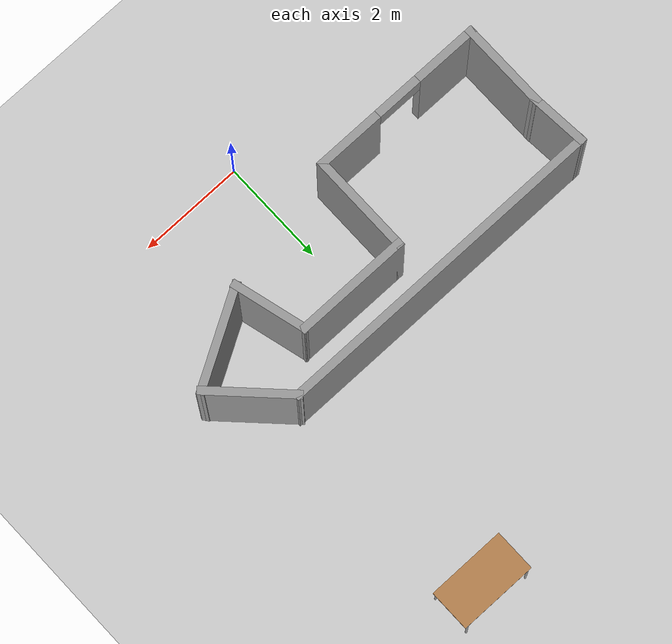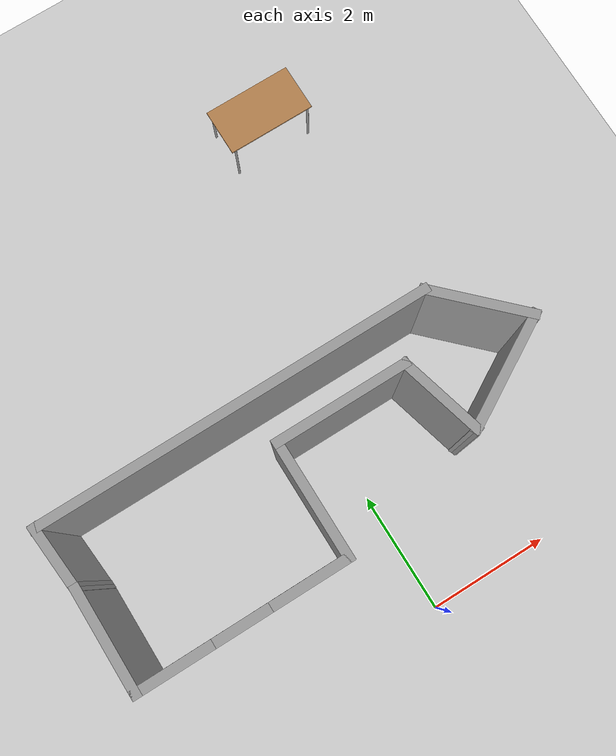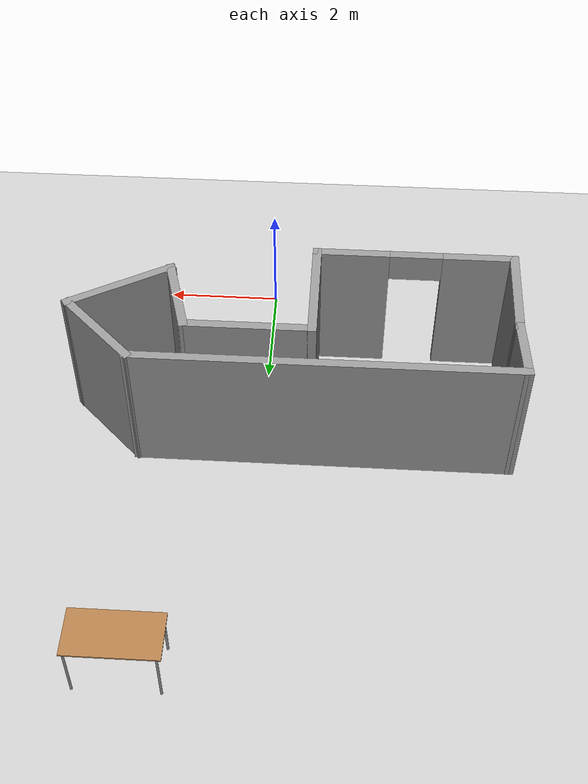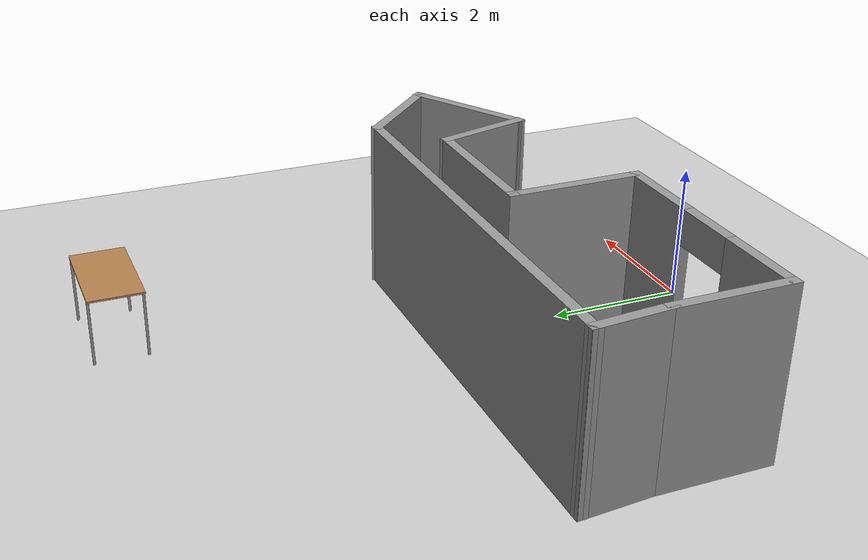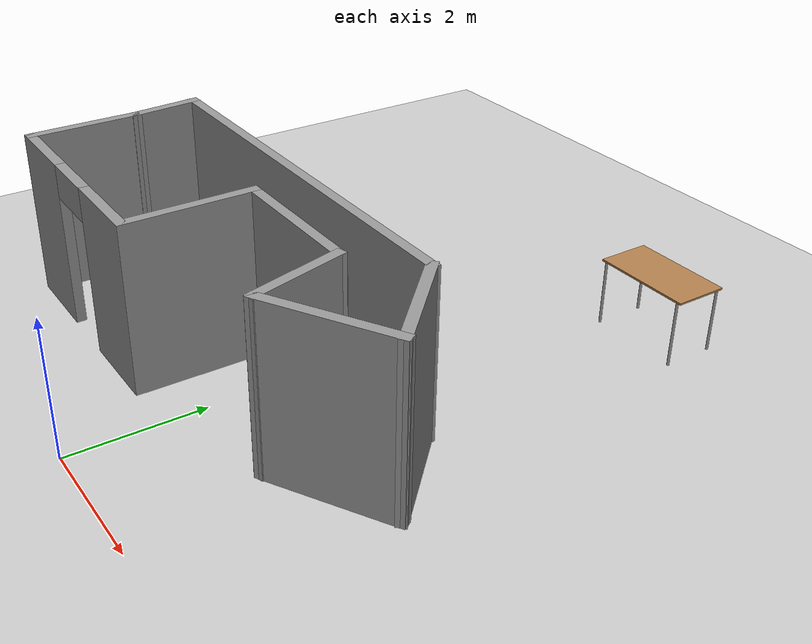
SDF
<sdf version="1.6">
 <world name="default">
  <model name="ground_plane">
   <static>1</static>
   <link name="link">
    <collision name="collision">
     <geometry><plane><normal>0 0 1</normal><size>1000 1000</size></plane></geometry>
     <surface>
      <contact><collide_bitmask>65535</collide_bitmask></contact>
      <friction><ode><mu>100</mu><mu2>50</mu2></ode></friction>
     </surface>
    </collision>
    <visual name="visual">
     <cast_shadows>0</cast_shadows>
     <geometry><plane><normal>0 0 1</normal><size>1000 1000</size></plane></geometry>
     <material>
      <script><uri>file://media/materials/scripts/gazebo.material</uri><name>Gazebo/Grey</name></script>
     </material>
    </visual>
   </link>
  </model>
  <model name="test1">
   <pose>-0.50116 2.70346 0 0 -0 0</pose>
   <link name="Wall_0">
    <collision name="Wall_0_Collision">
     <geometry><box><size>1.75 0.15 2.5</size></box></geometry>
     <pose>0 0 1.25 0 -0 0</pose>
    </collision>
    <visual name="Wall_0_Visual">
     <pose>0 0 1.25 0 -0 0</pose>
     <geometry><box><size>1.75 0.15 2.5</size></box></geometry>
     <material>
      <script><uri>file://media/materials/scripts/gazebo.material</uri><name>Gazebo/Grey</name></script>
      <ambient>1 1 1 1</ambient>
     </material>
     <meta><layer>0</layer></meta>
    </visual>
    <pose>-3.67354 -0.516718 0 0 0 -1.5708</pose>
   </link>
   <link name="Wall_1">
    <pose>-1.99854 -1.31672 0 0 -0 0</pose>
    <visual name="Wall_1_Visual_0">
     <pose>-1.1075 0 1.25 0 -0 0</pose>
     <geometry><box><size>1.285 0.15 2.5</size></box></geometry>
     <material>
      <script><uri>file://media/materials/scripts/gazebo.material</uri><name>Gazebo/Grey</name></script>
      <ambient>1 1 1 1</ambient>
     </material>
     <meta><layer>0</layer></meta>
    </visual>
    <collision name="Wall_1_Collision_0">
     <geometry><box><size>1.285 0.15 2.5</size></box></geometry>
     <pose>-1.1075 0 1.25 0 -0 0</pose>
    </collision>
    <visual name="Wall_1_Visual_1">
     <pose>1.0925 0 1.25 0 -0 0</pose>
     <geometry><box><size>1.315 0.15 2.5</size></box></geometry>
     <material>
      <script><uri>file://media/materials/scripts/gazebo.material</uri><name>Gazebo/Grey</name></script>
      <ambient>1 1 1 1</ambient>
     </material>
     <meta><layer>0</layer></meta>
    </visual>
    <collision name="Wall_1_Collision_1">
     <geometry><box><size>1.315 0.15 2.5</size></box></geometry>
     <pose>1.0925 0 1.25 0 -0 0</pose>
    </collision>
    <visual name="Wall_1_Visual_2">
     <pose>-0.015 0 2.25 0 -0 0</pose>
     <geometry><box><size>0.9 0.15 0.5</size></box></geometry>
     <material>
      <script><uri>file://media/materials/scripts/gazebo.material</uri><name>Gazebo/Grey</name></script>
      <ambient>1 1 1 1</ambient>
     </material>
     <meta><layer>0</layer></meta>
    </visual>
    <collision name="Wall_1_Collision_2">
     <geometry><box><size>0.9 0.15 0.5</size></box></geometry>
     <pose>-0.015 0 2.25 0 -0 0</pose>
    </collision>
   </link>
   <link name="Wall_2">
    <collision name="Wall_2_Collision">
     <geometry><box><size>2 0.15 2.5</size></box></geometry>
     <pose>0 0 1.25 0 -0 0</pose>
    </collision>
    <visual name="Wall_2_Visual">
     <pose>0 0 1.25 0 -0 0</pose>
     <geometry><box><size>2 0.15 2.5</size></box></geometry>
     <material>
      <script><uri>file://media/materials/scripts/gazebo.material</uri><name>Gazebo/Grey</name></script>
      <ambient>1 1 1 1</ambient>
     </material>
     <meta><layer>0</layer></meta>
    </visual>
    <pose>-0.323542 -0.391719 0 0 -0 1.5708</pose>
   </link>
   <link name="Wall_3">
    <collision name="Wall_3_Collision">
     <geometry><box><size>2.25 0.15 2.5</size></box></geometry>
     <pose>0 0 1.25 0 -0 0</pose>
    </collision>
    <visual name="Wall_3_Visual">
     <pose>0 0 1.25 0 -0 0</pose>
     <geometry><box><size>2.25 0.15 2.5</size></box></geometry>
     <material>
      <script><uri>file://media/materials/scripts/gazebo.material</uri><name>Gazebo/Grey</name></script>
      <ambient>1 1 1 1</ambient>
     </material>
     <meta><layer>0</layer></meta>
    </visual>
    <pose>0.726458 0.533282 0 0 -0 0</pose>
   </link>
   <link name="Wall_4">
    <collision name="Wall_4_Collision">
     <geometry><box><size>1.5 0.15 2.5</size></box></geometry>
     <pose>0 0 1.25 0 -0 0</pose>
    </collision>
    <visual name="Wall_4_Visual">
     <pose>0 0 1.25 0 -0 0</pose>
     <geometry><box><size>1.5 0.15 2.5</size></box></geometry>
     <material>
      <script><uri>file://media/materials/scripts/gazebo.material</uri><name>Gazebo/Grey</name></script>
      <ambient>1 1 1 1</ambient>
     </material>
     <meta><layer>0</layer></meta>
    </visual>
    <pose>1.95116 -0.118718 0 0 0 -1.309</pose>
   </link>
   <link name="Wall_5">
    <collision name="Wall_5_Collision">
     <geometry><box><size>2 0.15 2.5</size></box></geometry>
     <pose>0 0 1.25 0 -0 0</pose>
    </collision>
    <visual name="Wall_5_Visual">
     <pose>0 0 1.25 0 -0 0</pose>
     <geometry><box><size>2 0.15 2.5</size></box></geometry>
     <material>
      <script><uri>file://media/materials/scripts/gazebo.material</uri><name>Gazebo/Grey</name></script>
      <ambient>1 1 1 1</ambient>
     </material>
     <meta><layer>0</layer></meta>
    </visual>
    <pose>2.92694 -0.308218 0 0 -0 0.523599</pose>
   </link>
   <link name="Wall_6">
    <collision name="Wall_6_Collision">
     <geometry><box><size>1.75 0.15 2.5</size></box></geometry>
     <pose>0 0 1.25 0 -0 0</pose>
    </collision>
    <visual name="Wall_6_Visual">
     <pose>0 0 1.25 0 -0 0</pose>
     <geometry><box><size>1.75 0.15 2.5</size></box></geometry>
     <material>
      <script><uri>file://media/materials/scripts/gazebo.material</uri><name>Gazebo/Grey</name></script>
      <ambient>1 1 1 1</ambient>
     </material>
     <meta><layer>0</layer></meta>
    </visual>
    <pose>3.16233 0.719967 0 0 -0 2.35619</pose>
   </link>
   <link name="Wall_7">
    <collision name="Wall_7_Collision">
     <geometry><box><size>6.5 0.15 2.5</size></box></geometry>
     <pose>0 0 1.25 0 -0 0</pose>
    </collision>
    <visual name="Wall_7_Visual">
     <pose>0 0 1.25 0 -0 0</pose>
     <geometry><box><size>6.5 0.15 2.5</size></box></geometry>
     <material>
      <script><uri>file://media/materials/scripts/gazebo.material</uri><name>Gazebo/Grey</name></script>
      <ambient>1 1 1 1</ambient>
     </material>
     <meta><layer>0</layer></meta>
    </visual>
    <pose>-0.57836 1.28565 0 0 -0 3.14159</pose>
   </link>
   <link name="Wall_8">
    <collision name="Wall_8_Collision">
     <geometry><box><size>1.15554 0.15 2.5</size></box></geometry>
     <pose>0 0 1.25 0 -0 0</pose>
    </collision>
    <visual name="Wall_8_Visual">
     <pose>0 0 1.25 0 -0 0</pose>
     <geometry><box><size>1.15554 0.15 2.5</size></box></geometry>
     <material>
      <script><uri>file://media/materials/scripts/gazebo.material</uri><name>Gazebo/Grey</name></script>
      <ambient>1 1 1 1</ambient>
     </material>
     <meta><layer>0</layer></meta>
    </visual>
    <pose>-3.71345 0.784467 0 0 0 -1.49134</pose>
   </link>
   <static>1</static>
  </model>
  <model name="table">
   <static>1</static>
   <link name="link">
    <collision name="surface">
     <pose>0 0 1 0 -0 0</pose>
     <geometry><box><size>1.5 0.8 0.03</size></box></geometry>
     <surface><friction><ode><mu>0.6</mu><mu2>0.6</mu2></ode></friction></surface>
    </collision>
    <visual name="visual1">
     <pose>0 0 1 0 -0 0</pose>
     <geometry><box><size>1.5 0.8 0.03</size></box></geometry>
     <material>
      <script><uri>file://media/materials/scripts/gazebo.material</uri><name>Gazebo/Wood</name></script>
     </material>
    </visual>
    <collision name="front_left_leg">
     <pose>0.68 0.38 0.5 0 -0 0</pose>
     <geometry><cylinder><radius>0.02</radius><length>1</length></cylinder></geometry>
    </collision>
    <visual name="front_left_leg">
     <pose>0.68 0.38 0.5 0 -0 0</pose>
     <geometry><cylinder><radius>0.02</radius><length>1</length></cylinder></geometry>
     <material>
      <script><uri>file://media/materials/scripts/gazebo.material</uri><name>Gazebo/Grey</name></script>
     </material>
    </visual>
    <collision name="front_right_leg">
     <pose>0.68 -0.38 0.5 0 -0 0</pose>
     <geometry><cylinder><radius>0.02</radius><length>1</length></cylinder></geometry>
    </collision>
    <visual name="front_right_leg">
     <pose>0.68 -0.38 0.5 0 -0 0</pose>
     <geometry><cylinder><radius>0.02</radius><length>1</length></cylinder></geometry>
     <material>
      <script><uri>file://media/materials/scripts/gazebo.material</uri><name>Gazebo/Grey</name></script>
     </material>
    </visual>
    <collision name="back_right_leg">
     <pose>-0.68 -0.38 0.5 0 -0 0</pose>
     <geometry><cylinder><radius>0.02</radius><length>1</length></cylinder></geometry>
    </collision>
    <visual name="back_right_leg">
     <pose>-0.68 -0.38 0.5 0 -0 0</pose>
     <geometry><cylinder><radius>0.02</radius><length>1</length></cylinder></geometry>
     <material>
      <script><uri>file://media/materials/scripts/gazebo.material</uri><name>Gazebo/Grey</name></script>
     </material>
    </visual>
    <collision name="back_left_leg">
     <pose>-0.68 0.38 0.5 0 -0 0</pose>
     <geometry><cylinder><radius>0.02</radius><length>1</length></cylinder></geometry>
    </collision>
    <visual name="back_left_leg">
     <pose>-0.68 0.38 0.5 0 -0 0</pose>
     <geometry><cylinder><radius>0.02</radius><length>1</length></cylinder></geometry>
     <material>
      <script><uri>file://media/materials/scripts/gazebo.material</uri><name>Gazebo/Grey</name></script>
     </material>
    </visual>
   </link>
   <pose>1.80942 8.16445 0 0 -0 0</pose>
  </model>
 </world>
</sdf>
